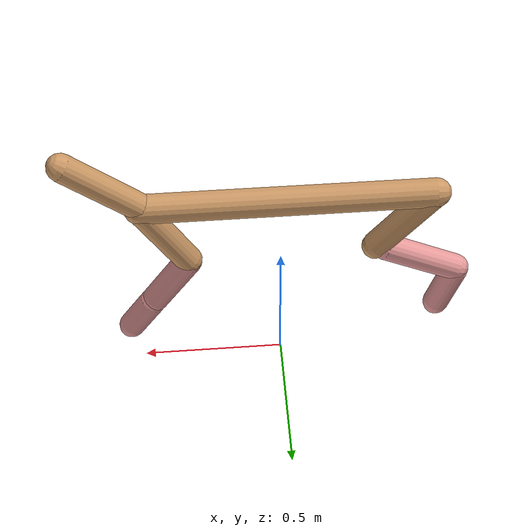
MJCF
<mujoco model="cheetah">
  <compiler angle="radian" coordinate="local" inertiafromgeom="true" settotalmass="14" />
  <default>
    <joint armature=".1" damping=".01" limited="true" solimplimit="0 .8 .03" solreflimit=".02 1" stiffness="8" />
    <geom conaffinity="0" condim="3" contype="1" friction="0.8 .1 .1" rgba="0.8 0.6 .4 1" solimp="0.0 0.8 0.01" solref="0.02 1" />
    <motor ctrllimited="true" ctrlrange="-1 1" />
  </default>
  <size nstack="300000" nuser_geom="1" />
  <option gravity="0 0 -9.81" timestep="0.01" />
  <worldbody>
    <body name="torso" pos="0.0 0.0 0.7618858897885408">
      <joint armature="0" axis="1 0 0" damping="0" limited="false" name="ignorex" pos="0 0 0" stiffness="0" type="slide" />
      <joint armature="0" axis="0 0 1" damping="0" limited="false" name="ignorez" pos="0 0 0" stiffness="0" type="slide" />
      <joint armature="0" axis="0 1 0" damping="0" limited="false" name="ignorey" pos="0 0 0" stiffness="0" type="hinge" />
      <geom fromto="-0.5 0.0 0.0 0.4552623354879066 0.0 0.0" name="torso" size="0.04836681432126013" type="capsule" />
      <geom axisangle="0 1 0 .87" name="head" pos="0.5552623354879066 0.0 0.1" size="0.04503960691912087 0.15" type="capsule" />

      <body name="bthigh" pos="-.5 0 0">
        <joint axis="0 1 0" damping="6" name="bthigh" pos="0 0 0" range="-.52 1.05" stiffness="240" type="hinge" />
        <geom axisangle="0 1 0 -3.8" name="bthigh" pos="0.09630027986847668 0.0 -0.12519036382901969" size="0.04579536703504064 0.1389320078156938" type="capsule" />
        <body name="bshin" pos="0.15260055973695336 0.0 -0.24038072765803936">
          <joint axis="0 1 0" damping="4.5" name="bshin" pos="0 0 0" range="-.785 .785" stiffness="180" type="hinge" />
          <geom axisangle="0 1 0 -2.03" name="bshin" pos="-0.1343854718574982 0.0 -0.0671927359287491" rgba="0.9 0.6 0.6 1" size="0.04579536703504064 0.14372276670589013" type="capsule" />
          <body name="bfoot" pos="-0.2687709437149964 0.0 -0.1343854718574982">
            <joint axis="0 1 0" damping="3" name="bfoot" pos="0 0 0" range="-.4 .785" stiffness="120" type="hinge" />
            <geom axisangle="0 1 0 -.27" name="bfoot" pos="0.028837701040533233 0.0 -0.09324190003105745" rgba="0.9 0.6 0.6 1" size="0.04579536703504064 0.09006626713569114" type="capsule" />
            <inertial mass="10" />
          </body>
        </body>
      </body>
      <body name="fthigh" pos="0.4552623354879066 0.0 0.0">
        <joint axis="0 1 0" damping="4.5" name="fthigh" pos="0 0 0" range="-1.5 0.8" stiffness="180" type="hinge" />
        <geom axisangle="0 1 0 .52" name="fthigh" pos="-0.074338152090145 0.0 -0.12743683215453427" size="0.045860403877066844 0.14160964784715058" type="capsule" />
        <body name="fshin" pos="-0.14867630418029 0.0 -0.25487366430906855">
          <joint axis="0 1 0" damping="3" name="fshin" pos="0 0 0" range="-1.2 1.1" stiffness="120" type="hinge" />
          <geom axisangle="0 1 0 -.6" name="fshin" pos="0.06901753348542786 0.0 -0.09556273867213087" rgba="0.9 0.6 0.6 1" size="0.045860403877066844 0.11286182459998466" type="capsule" />
          <body name="ffoot" pos="0.1380350669708557 0.0 -0.19112547734426175">
            <joint axis="0 1 0" damping="1.5" name="ffoot" pos="0 0 0" range="-3.1 -0.3" stiffness="60" type="hinge" />
            <geom axisangle="0 1 0 -.6" name="ffoot" pos="0.047450385490464514 0.0 -0.07381171076294482" rgba="0.9 0.6 0.6 1" size="0.045860403877066844 0.07453139360376346" type="capsule" />
            <inertial mass="10" />
          </body>
        </body>
      </body>
    </body>
  </worldbody>
  <actuator>
    <motor gear="120" joint="bthigh" name="bthigh" />
    <motor gear="90" joint="bshin" name="bshin" />
    <motor gear="60" joint="bfoot" name="bfoot" />
    <motor gear="120" joint="fthigh" name="fthigh" />
    <motor gear="60" joint="fshin" name="fshin" />
    <motor gear="30" joint="ffoot" name="ffoot" />
  </actuator>
</mujoco>
